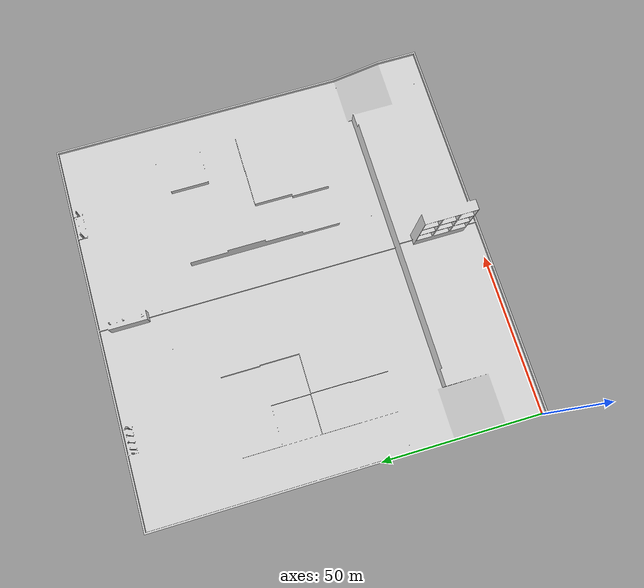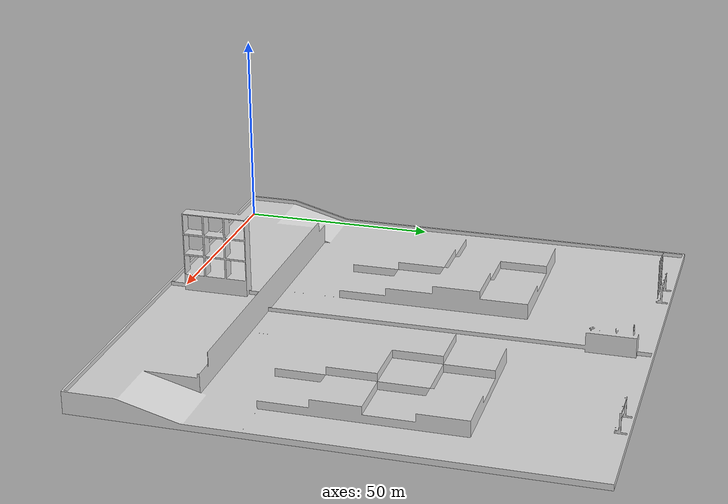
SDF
<?xml version="1.0" ?>
<sdf version="1.6">
  <model name="NHK2026">
    <static>true</static>
    <link name="link">
      <collision name="collision">
        <geometry>
          <mesh>
            <scale>0.01 0.01 0.01</scale>
            <uri>model://nhk2026/meshes/field.dae</uri>
          </mesh>
        </geometry>
      </collision>
      <visual name="visual">
        <geometry>
          <mesh>
            <scale>0.01 0.01 0.01</scale>
            <uri>model://nhk2026/meshes/field.dae</uri>
          </mesh>
        </geometry>
      </visual>
    </link>
  </model>
</sdf>
